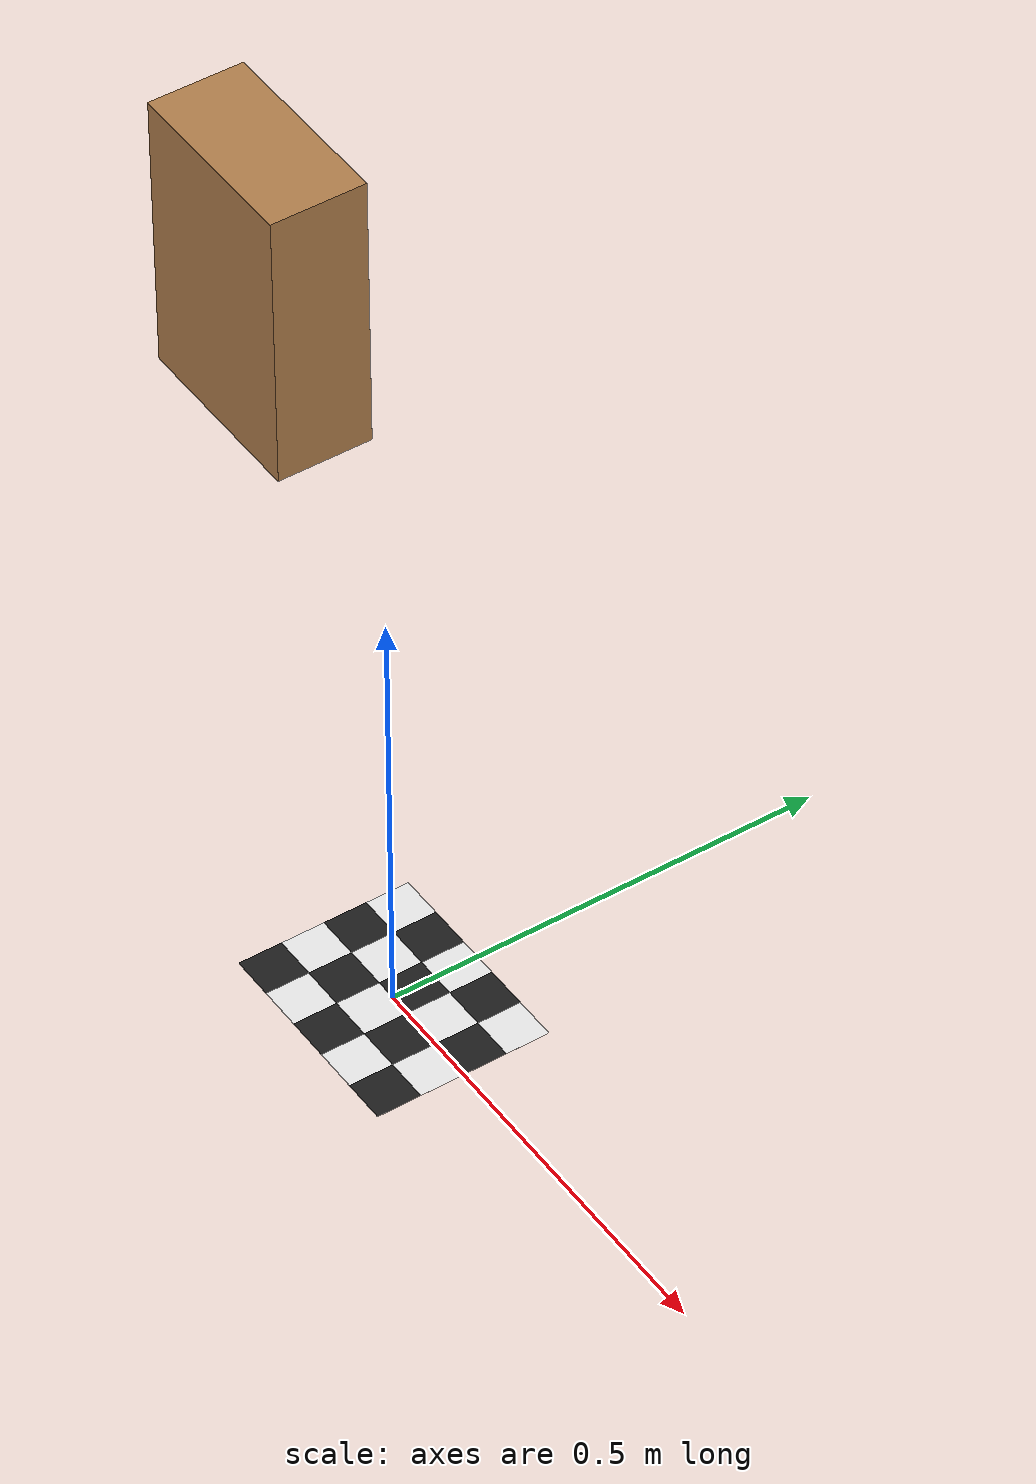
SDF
<sdf version='1.6'>
  <world name='default'>
    <scene>
      <ambient>0.4 0.4 0.4 1</ambient>
      <background>0.7 0.7 0.7 1</background>
      <shadows>0</shadows>
    </scene>

    <physics name='default_physics' default='0' type='ode'>
      <max_step_size>0.001</max_step_size>
      <real_time_factor>1</real_time_factor>
      <real_time_update_rate>1000</real_time_update_rate>
      <gravity>0 0 -9.8</gravity>
      <magnetic_field>6e-06 2.3e-05 -4.2e-05</magnetic_field>
    </physics>

    <light name='sun' type='directional'>
      <cast_shadows>0</cast_shadows>
      <pose frame=''>0 0 10 0 -0 0</pose>
      <diffuse>0.8 0.8 0.8 1</diffuse>
      <specular>0.1 0.1 0.1 1</specular>
      <attenuation>
        <range>1000</range>
        <constant>0.9</constant>
        <linear>0.01</linear>
        <quadratic>0.001</quadratic>
      </attenuation>
      <direction>-0.5 0.5 -1</direction>
    </light>

    <gui fullscreen='0'>
      <camera name='user_camera'>
        <pose frame=''>0 0 0.5 0 1.570796 1.570796</pose>
        <view_controller>orbit</view_controller>
        <projection_type>perspective</projection_type>
      </camera>
    </gui>

    <model name='camera'>
        <link name='link'>
            <pose>0 -0.125 1.0 0 1.570796 1.570796</pose>
            <visual name='visual'>
                <pose>0 0 0 0 0 0</pose>
                <geometry>
                    <box>
                        <size>0.3 0.2 0.1</size>
                    </box>
                </geometry>
                <material>
                    <script>
                        <name>Gazebo/Wood</name>
                        <uri>__default__</uri>
                    </script>
                </material>
            </visual>
            <gravity>0</gravity>
            <sensor name='camera_sensor' type='camera'>
                <camera>
                    <image>
                        <width>1280</width>
                        <height>800</height>
                        <format>R8G8B8</format>
                    </image>
                    <clip>
                        <near>0.19</near>
                        <far>3.2</far>
                    </clip>
                    <noise>
                        <type>gaussian</type>
                        <mean>0</mean>
                        <stddev>0</stddev>
                    </noise>

                    <lens>
                        <intrinsics>
                            <fx>1945.035121562</fx>
                            <fy>1945.5172005493810</fy>
                            <cx>613.836478629</cx>
                            <cy>805.22387198283725</cy>
                            <s>0.0</s>
                        </intrinsics>
                    </lens>
                </camera>
                <visualize>1</visualize>
                <plugin name='camera_controller' filename='libgazebo_ros_camera.so'>
                    <alwaysOn>true</alwaysOn>
                    <updateRate>30</updateRate>
                    <cameraName>camera_sensor</cameraName>
                    <imageTopicName>image_raw</imageTopicName>
                    <cameraInfoTopicName>camera_info</cameraInfoTopicName>
                    <frameName>camera_link</frameName>
                    <CxPrime>613.836478629</CxPrime>
                    <Cx>613.836478629</Cx>
                    <Cy>805.52387198283725</Cy>
                    <focalLengthX>1945.035121562</focalLengthX>
                    <focalLengthY>1945.5172005493810</focalLengthY>
                    <hackBaseline>0</hackBaseline>
                    <distortionK1>-0.035761454439344531</distortionK1>
                    <distortionK2>0.27221522456036840</distortionK2>
                    <distortionT1>-0.0017235085650303857</distortionT1>
                    <distortionT2>-0.0029871640470490609</distortionT2>
                    <distortionK3>0</distortionK3>
                    <robotNamespace>/</robotNamespace>
                </plugin>
            </sensor>
        </link>
        <static>1</static>
    </model>

    <model name='board'>
        <pose frame=''>-0.125 -0.1 0 0 0 0</pose>
        <model name='unit_box_00'>
          <pose frame=''>0.025 0.025 0 0 0 0</pose>
          <link name='link'>
            <visual name='visual'>
              <geometry>
                <plane>
                  <size>0.05 0.05</size>
                </plane>
              </geometry>
              <material>
                <script>
                  <name>Gazebo/Black</name>
                  <uri>file://media/materials/scripts/gazebo.material</uri>
                </script>
              </material>
            </visual>
            <gravity>0</gravity>
          </link>
        </model>

        <model name='unit_box_01'>
          <pose frame=''>0.025 0.075 0 0 0 0</pose>
          <link name='link'>
            <visual name='visual'>
              <geometry>
                <plane>
                  <size>0.05 0.05</size>
                </plane>
              </geometry>
              <material>
                <script>
                  <name>Gazebo/White</name>
                  <uri>file://media/materials/scripts/gazebo.material</uri>
                </script>
              </material>
            </visual>
            <gravity>0</gravity>
          </link>
        </model>

        <model name='unit_box_02'>
          <pose frame=''>0.025 0.125 0 0 0 0</pose>
          <link name='link'>
            <visual name='visual'>
              <geometry>
                <plane>
                  <size>0.05 0.05</size>
                </plane>
              </geometry>
              <material>
                <script>
                  <name>Gazebo/Black</name>
                  <uri>file://media/materials/scripts/gazebo.material</uri>
                </script>
              </material>
            </visual>
            <gravity>0</gravity>
          </link>
        </model>

        <model name='unit_box_03'>
          <pose frame=''>0.025 0.175 0 0 0 0</pose>
          <link name='link'>
            <visual name='visual'>
              <geometry>
                <plane>
                  <size>0.05 0.05</size>
                </plane>
              </geometry>
              <material>
                <script>
                  <name>Gazebo/white</name>
                  <uri>file://media/materials/scripts/gazebo.material</uri>
                </script>
              </material>
            </visual>
            <gravity>0</gravity>
          </link>
        </model>

        <model name='unit_box_10'>
          <pose frame=''>0.075 0.025 0 0 0 0</pose>
          <link name='link'>
            <visual name='visual'>
              <geometry>
                <plane>
                  <size>0.05 0.05</size>
                </plane>
              </geometry>
              <material>
                <script>
                  <name>Gazebo/White</name>
                  <uri>file://media/materials/scripts/gazebo.material</uri>
                </script>
              </material>
            </visual>
            <gravity>0</gravity>
          </link>
        </model>

        <model name='unit_box_11'>
          <pose frame=''>0.075 0.075 0 0 0 0</pose>
          <link name='link'>
            <visual name='visual'>
              <geometry>
                <plane>
                  <size>0.05 0.05</size>
                </plane>
              </geometry>
              <material>
                <script>
                  <name>Gazebo/Black</name>
                  <uri>file://media/materials/scripts/gazebo.material</uri>
                </script>
              </material>
            </visual>
            <gravity>0</gravity>
          </link>
        </model>

        <model name='unit_box_12'>
          <pose frame=''>0.075 0.125 0 0 0 0</pose>
          <link name='link'>
            <visual name='visual'>
              <geometry>
                <plane>
                  <size>0.05 0.05</size>
                </plane>
              </geometry>
              <material>
                <script>
                  <name>Gazebo/White</name>
                  <uri>file://media/materials/scripts/gazebo.material</uri>
                </script>
              </material>
            </visual>
            <gravity>0</gravity>
          </link>
        </model>

        <model name='unit_box_1'>
          <pose frame=''>0.075 0.175 0 0 0 0</pose>
          <link name='link'>
            <visual name='visual'>
              <geometry>
                <plane>
                  <size>0.05 0.05</size>
                </plane>
              </geometry>
              <material>
                <script>
                  <name>Gazebo/Black</name>
                  <uri>file://media/materials/scripts/gazebo.material</uri>
                </script>
              </material>
            </visual>
            <gravity>0</gravity>
          </link>
        </model>

        <model name='unit_box_20'>
          <pose frame=''>0.125 0.025 0 0 0 0</pose>
          <link name='link'>
            <visual name='visual'>
              <geometry>
                <plane>
                  <size>0.05 0.05</size>
                </plane>
              </geometry>
              <material>
                <script>
                  <name>Gazebo/Black</name>
                  <uri>file://media/materials/scripts/gazebo.material</uri>
                </script>
              </material>
            </visual>
            <gravity>0</gravity>
          </link>
        </model>

        <model name='unit_box_21'>
          <pose frame=''>0.125 0.075 0 0 0 0</pose>
          <link name='link'>
            <visual name='visual'>
              <geometry>
                <plane>
                  <size>0.05 0.05</size>
                </plane>
              </geometry>
              <material>
                <script>
                  <name>Gazebo/White</name>
                  <uri>file://media/materials/scripts/gazebo.material</uri>
                </script>
              </material>
            </visual>
            <gravity>0</gravity>
          </link>
        </model>

        <model name='unit_box_22'>
          <pose frame=''>0.125 0.125 0 0 0 0</pose>
          <link name='link'>
            <visual name='visual'>
              <geometry>
                <plane>
                  <size>0.05 0.05</size>
                </plane>
              </geometry>
              <material>
                <script>
                  <name>Gazebo/Black</name>
                  <uri>file://media/materials/scripts/gazebo.material</uri>
                </script>
              </material>
            </visual>
            <gravity>0</gravity>
          </link>
        </model>

        <model name='unit_box_23'>
          <pose frame=''>0.125 0.175 0 0 0 0</pose>
          <link name='link'>
            <visual name='visual'>
              <geometry>
                <plane>
                  <size>0.05 0.05</size>
                </plane>
              </geometry>
              <material>
                <script>
                  <name>Gazebo/White</name>
                  <uri>file://media/materials/scripts/gazebo.material</uri>
                </script>
              </material>
            </visual>
            <gravity>0</gravity>
          </link>
        </model>

        <model name='unit_box_30'>
          <pose frame=''>0.175 0.025 0 0 0 0</pose>
          <link name='link'>
            <visual name='visual'>
              <geometry>
                <plane>
                  <size>0.05 0.05</size>
                </plane>
              </geometry>
              <material>
                <script>
                  <name>Gazebo/White</name>
                  <uri>file://media/materials/scripts/gazebo.material</uri>
                </script>
              </material>
            </visual>
            <gravity>0</gravity>
          </link>
        </model>

        <model name='unit_box_31'>
          <pose frame=''>0.175 0.075 0 0 0 0</pose>
          <link name='link'>
            <visual name='visual'>
              <geometry>
                <plane>
                  <size>0.05 0.05</size>
                </plane>
              </geometry>
              <material>
                <script>
                  <name>Gazebo/Black</name>
                  <uri>file://media/materials/scripts/gazebo.material</uri>
                </script>
              </material>
            </visual>
            <gravity>0</gravity>
          </link>
        </model>

        <model name='unit_box_32'>
          <pose frame=''>0.175 0.125 0 0 0 0</pose>
          <link name='link'>
            <visual name='visual'>
              <geometry>
                <plane>
                  <size>0.05 0.05</size>
                </plane>
              </geometry>
              <material>
                <script>
                  <name>Gazebo/White</name>
                  <uri>file://media/materials/scripts/gazebo.material</uri>
                </script>
              </material>
            </visual>
            <gravity>0</gravity>
          </link>
        </model>

        <model name='unit_box_33'>
          <pose frame=''>0.175 0.175 0 0 0 0</pose>
          <link name='link'>
            <visual name='visual'>
              <geometry>
                <plane>
                  <size>0.05 0.05</size>
                </plane>
              </geometry>
              <material>
                <script>
                  <name>Gazebo/Black</name>
                  <uri>file://media/materials/scripts/gazebo.material</uri>
                </script>
              </material>
            </visual>
            <gravity>0</gravity>
          </link>
        </model>

        <model name='unit_box_40'>
          <pose frame=''>0.225 0.025 0 0 0 0</pose>
          <link name='link'>
            <visual name='visual'>
              <geometry>
                <plane>
                  <size>0.05 0.05</size>
                </plane>
              </geometry>
              <material>
                <script>
                  <name>Gazebo/Black</name>
                  <uri>file://media/materials/scripts/gazebo.material</uri>
                </script>
              </material>
            </visual>
            <gravity>0</gravity>
          </link>
        </model>

        <model name='unit_box_41'>
          <pose frame=''>0.225 0.075 0 0 0 0</pose>
          <link name='link'>
            <visual name='visual'>
              <geometry>
                <plane>
                  <size>0.05 0.05</size>
                </plane>
              </geometry>
              <material>
                <script>
                  <name>Gazebo/White</name>
                  <uri>file://media/materials/scripts/gazebo.material</uri>
                </script>
              </material>
            </visual>
            <gravity>0</gravity>
          </link>
        </model>

        <model name='unit_box_42'>
          <pose frame=''>0.225 0.125 0 0 0 0</pose>
          <link name='link'>
            <visual name='visual'>
              <geometry>
                <plane>
                  <size>0.05 0.05</size>
                </plane>
              </geometry>
              <material>
                <script>
                  <name>Gazebo/Black</name>
                  <uri>file://media/materials/scripts/gazebo.material</uri>
                </script>
              </material>
            </visual>
            <gravity>0</gravity>
          </link>
        </model>

        <model name='unit_box_43'>
          <pose frame=''>0.225 0.175 0 0 0 0</pose>
          <link name='link'>
            <visual name='visual'>
              <geometry>
                <plane>
                  <size>0.05 0.05</size>
                </plane>
              </geometry>
              <material>
                <script>
                  <name>Gazebo/White</name>
                  <uri>file://media/materials/scripts/gazebo.material</uri>
                </script>
              </material>
            </visual>
            <gravity>0</gravity>
          </link>
        </model>

    </model>
  </world>
</sdf>
